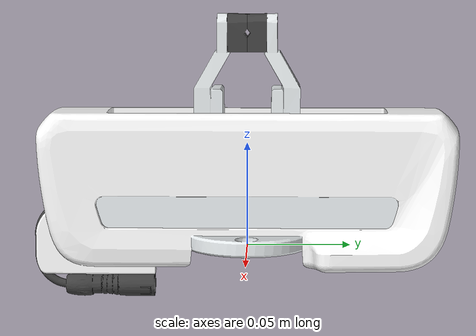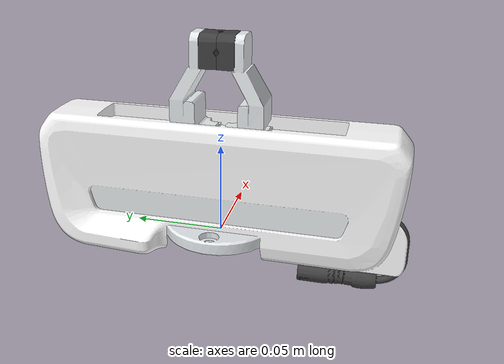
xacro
<?xml version="1.0" encoding="utf-8"?>
<robot xmlns:xacro="http://www.ros.org/wiki/xacro" name="hand">
  <xacro:arg name="prefix" default="panda_"/>
  <xacro:arg name="robot_ip" default="172.16.0.2"/>
  <xacro:arg name="load_ros2_control" default="false"/>
  <xacro:arg name="fix_finger_joints" default="false"/>
  <xacro:arg name="insert_grasp_frame" default="false"/>
  <xacro:arg name="connected_to" default=""/>
  <xacro:arg name="xyz" default="0 0 0"/>
  <xacro:arg name="rpy" default="0 0 0"/>

  <xacro:include filename="hand.xacro"/>
  <xacro:hand prefix="$(arg prefix)" connected_to="$(arg connected_to)" xyz="$(arg xyz)" rpy="$(arg rpy)"
              fix_finger_joints="$(arg fix_finger_joints)" insert_grasp_frame="$(arg insert_grasp_frame)"/>

  <xacro:unless value="$(arg fix_finger_joints)">
    <xacro:if value="$(arg load_ros2_control)">
      <xacro:include filename="$(find franka_panda_description)/ros2_control/hand.ros2_control.xacro"/>
      <xacro:hand_interface
          name="PandaHandInterface"
          prefix="$(arg prefix)"
          robot_ip="$(arg robot_ip)"
          use_sim="$(arg use_sim)"
      />
    </xacro:if>
  </xacro:unless>

</robot>

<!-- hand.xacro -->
<robot xmlns:xacro="http://www.ros.org/wiki/xacro" name="hand">
  <xacro:macro name="hand" params="prefix:='panda_' connected_to:='' xyz:='0 0 0' rpy:='0 0 0'">
    <xacro:unless value="${connected_to == ''}">
      <joint name="${prefix}hand_joint" type="fixed">
        <parent link="${connected_to}"/>
        <child link="${prefix}hand"/>
        <origin xyz="${xyz}" rpy="${rpy}"/>
      </joint>
    </xacro:unless>
    <link name="${prefix}hand">
      <visual>
        <geometry>
          <mesh filename="package://franka_panda_description/meshes/visual/hand.dae"/>
        </geometry>
      </visual>
      <collision>
        <geometry>
          <mesh filename="package://franka_panda_description/meshes/collision/hand.stl"/>
        </geometry>
      </collision>
      <inertial>
        <origin rpy="0 0 0" xyz="0 0.0015244 0.0275912"/>
        <mass value="0.73"/>
        <inertia ixx="0.00278560230025" ixy="0.0" ixz="0.0" iyy="0.000400033405336" iyz="0.0" izz="0.00256378041832"/>
      </inertial>
    </link>
    <link name="${prefix}leftfinger">
      <visual>
        <geometry>
          <mesh filename="package://franka_panda_description/meshes/visual/finger.dae"/>
        </geometry>
      </visual>
      <collision>
        <geometry>
          <mesh filename="package://franka_panda_description/meshes/collision/finger.stl"/>
        </geometry>
      </collision>
      <inertial>
        <origin rpy="0 0 0" xyz="0 0.0145644 0.0227941"/>
        <mass value="0.1"/>
        <inertia ixx="3.01220925051e-05" ixy="0.0" ixz="0.0" iyy="2.95873808038e-05" iyz="0.0" izz="6.95125211657e-06"/>
      </inertial>
    </link>
    <link name="${prefix}rightfinger">
      <visual>
        <origin xyz="0 0 0" rpy="0 0 ${pi}"/>
        <geometry>
          <mesh filename="package://franka_panda_description/meshes/visual/finger.dae"/>
        </geometry>
      </visual>
      <collision>
        <origin xyz="0 0 0" rpy="0 0 ${pi}"/>
        <geometry>
          <mesh filename="package://franka_panda_description/meshes/collision/finger.stl"/>
        </geometry>
      </collision>
      <inertial>
        <origin rpy="0 0 3.141592653589793" xyz="0 -0.0145644 0.0227941"/>
        <mass value="0.1"/>
        <inertia ixx="3.01220925051e-05" ixy="0.0" ixz="0.0" iyy="2.95873808038e-05" iyz="0.0" izz="6.95125211657e-06"/>
      </inertial>
    </link>
    <joint name="${prefix}finger_joint1" type="prismatic">
      <parent link="${prefix}hand"/>
      <child link="${prefix}leftfinger"/>
      <origin xyz="0 0 0.0584" rpy="0 0 0"/>
      <axis xyz="0 1 0"/>
      <limit effort="20" lower="0.0" upper="0.04" velocity="0.2"/>
      <dynamics damping="500.0" friction="0.0"/>
    </joint>
    <joint name="${prefix}finger_joint2" type="prismatic">
      <parent link="${prefix}hand"/>
      <child link="${prefix}rightfinger"/>
      <origin xyz="0 0 0.0584" rpy="0 0 0"/>
      <axis xyz="0 -1 0"/>
      <limit effort="20" lower="0.0" upper="0.04" velocity="0.2"/>
      <dynamics damping="500.0" friction="0.0"/>
      <mimic joint="${prefix}finger_joint1"/>
    </joint>
  </xacro:macro>
</robot>
